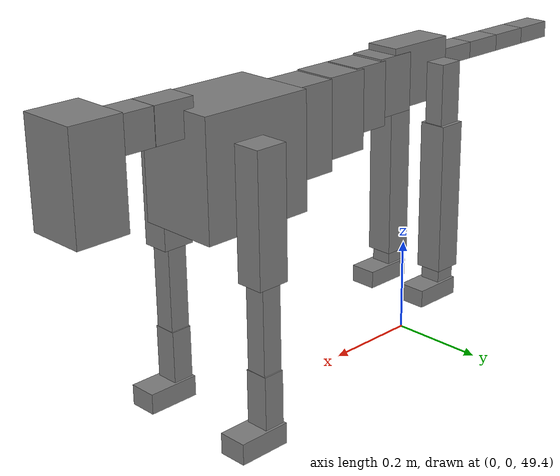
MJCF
<mujoco model="dog">

    <default>
        <joint armature="0.02" stiffness="1" damping="0.2" limited="true"/>
        <geom condim="3" friction="1 0.05 0.05" margin="0.01"/>
        <motor ctrllimited="true" ctrlrange="-1.0 1.0" forcelimited="true" gear="50"/>
    </default>

    <compiler inertiafromgeom="true" angle="radian"/>

    <option timestep="0.016" iterations="50" tolerance="1e-10" solver="Newton" jacobian="dense" cone="pyramidal"/>

    <size nconmax="20000" njmax="60000" nstack="5000000"/>
    <visual>
        <map force="0.1" zfar="30"/>
        <rgba haze="0.15 0.25 0.35 1"/>
        <quality shadowsize="2048"/>
        <global offwidth="800" offheight="800"/>
    </visual>

    <asset>
        <texture type="skybox" builtin="gradient" rgb1="0.3 0.5 0.7" rgb2="0 0 0" width="512" height="512"/>
        <texture name="texplane" type="2d" builtin="checker" rgb1=".2 .3 .4" rgb2=".1 0.15 0.2" width="512" height="512"
                 mark="cross" markrgb=".8 .8 .8"/>
        <texture name="texgeom" type="cube" builtin="flat" mark="cross" width="127" height="1278" rgb1="0.8 0.6 0.4"
                 rgb2="0.8 0.6 0.4" markrgb="1 1 1" random="0.01"/>

        <material name="matplane" reflectance="0.3" texture="texplane" texrepeat="1 1" texuniform="true"/>
        <material name="matgeom" texture="texgeom" texuniform="true" rgba="0.8 0.6 .4 1"/>
    </asset>

    <worldbody>
        <geom name="floor" pos="0 0 0" size="0 0 .25" type="plane" material="matplane" condim="3"/>

        <light directional="false" diffuse=".2 .2 .2" specular="0 0 0" pos="0 0 5" dir="0 0 -1" castshadow="false"/>
        <light mode="targetbodycom" target="torso" directional="false" diffuse=".8 .8 .8" specular="0.3 0.3 0.3"
               pos="0 0 4.0" dir="0 0 -1"/>

        <body name="root" pos="0 0 50">
            <freejoint name="root_1"/>
            <geom type="box" pos="0 0 -0.02" size="0.0774  0.0358  0.063" density="2030"/>

            <body name="spine1" pos="0.054 0 0">
                <joint name="spine1_y" axis="0 1 0" range="0 0.7" limited="true"/>
                <geom type="box" pos="0.02375 0 -0.03" size="0.04375  0.0375  0.05985" density="2030"/>

                <body name="spine2" pos="0.0612 0 0">
                    <joint name="spine2_y" axis="0 1 0" range="-0.15 0.15" limited="true"/>
                    <geom type="box" pos="0.03555  0  -0.04" size="0.04055  0.039  0.06615" density="2030"/>

                    <body name="spine3" pos="0.0730 0 0">
                        <joint name="spine3_y" axis="0 1 0" range="-0.15 0.15" limited="true"/>
                        <geom type="box" pos="0.03555  0  -0.057" size="0.04555  0.0445  0.081" density="2030"/>

                        <body name="spine4" pos="0.0780 0 0">
                            <joint name="spine4_y" axis="0 1 0" range="-0.15 0.15" limited="true"/>
                            <geom type="box" pos="0.05265  0  -0.07" size="0.05265  0.045  0.09135" density="2030"/>

                            <body name="torso" pos="0.1082 0 0">
                                <joint name="torso_y" axis="0 1 0" range="-0.15 0.15" limited="true"/>
                                <geom type="box" pos="0.11925  0  -0.085" size="0.11925  0.085  0.11745"
                                      density="2030"/>

                                <body name="neck1" pos="0.2160  0   0.0180">
                                    <joint name="neck1_y" axis="0 1 0" range="-1.2  -1" limited="true"/>
                                    <geom type="box" pos="0.0423  0  0" size="0.0423  0.03  0.036" density="2325"/>

                                    <body name="neck2" pos="0.0853  0  0">
                                        <joint name="neck2_y" axis="0 1 0" range="0.1  0" limited="true"/>
                                        <geom type="box" pos="0.0423  0  0" size="0.0423  0.03  0.036" density="2325"/>

                                        <body name="head" pos="0.0853  0  0">
                                            <joint name="head_y" axis="0 1 0" range="-0.3  -0.2" limited="true"/>
                                            <geom type="box" pos="0.0531  0  -0.055" size="0.0531  0.06  0.1044"
                                                  density="4030"/>

                                        </body>
                                    </body>
                                </body>

                                <body name="front_shoulder" pos="0.156  0   -0.0480">
                                    <joint name="front_shoulder_y" axis="0 1 0" range="-1 1.5" limited="true"/>
                                    <geom type="box" pos="0 0.13 -0.1037" size="0.0333  0.0285  0.1303" density="1158"/>
                                    <geom type="box" pos="0 -0.13 -0.1037" size="0.0333  0.0285  0.1303"
                                          density="1158"/>

                                    <body name="front_elbow" pos="0  0  -0.2073">
                                        <joint name="front_elbow_y" axis="0 1 0" range="-2 0" limited="true"/>
                                        <geom type="box" pos="0 0.13 -0.1070" size="0.0211  0.0216  0.1070"
                                              density="1081"/>
                                        <geom type="box" pos="0 -0.13 -0.1070" size="0.0211  0.0216  0.1070"
                                              density="1081"/>

                                        <body name="front_wrist" pos="0  0  -0.2139">
                                            <joint name="front_wrist_y" axis="0 1 0" range="-0.2 0" limited="true"/>
                                            <geom type="box" pos="0 0.13 -0.0555" size="0.0219  0.0243  0.0686"
                                                  density="1664"/>
                                            <geom type="box" pos="0 -0.13 -0.0555" size="0.0219  0.0243  0.0686"
                                                  density="1664"/>

                                            <body name="front_finger_end" pos="0  0  -0.1109">
                                                <joint name="front_finger_y" axis="0 1 0" range="-0.4 1"
                                                       limited="true"/>
                                                <geom type="box" pos="0.0296  0.13  -0.0063"
                                                      size="0.0543  0.0296  0.0213" density="1515"/>
                                                <geom type="box" pos="0.0296  -0.13  -0.0063"
                                                      size="0.0543  0.0296  0.0213" density="1515"/>

                                            </body>

                                        </body>
                                    </body>
                                </body>

                            </body>
                        </body>
                    </body>
                </body>
            </body>

            <body name="back_hip" pos="-0.03 0 -0.018">
                <joint name="back_hip_y" axis="0 1 0" range="-1.5 0.3" limited="true"/>
                <geom type="box" pos="0 0.07 -0.0598" size="0.0264  0.0207  0.0826" density="1154"/>
                <geom type="box" pos="0 -0.07 -0.0598" size="0.0264  0.0207  0.0826" density="1154"/>

                <body name="back_knee" pos="0  0  -0.1196">
                    <joint name="back_knee_y" axis="0 1 0" range="0 2.8" limited="true"/>
                    <geom type="box" pos="0 0.07 -0.1437" size="0.0293  0.0289  0.1592" density="1227"/>
                    <geom type="box" pos="0 -0.07 -0.1437" size="0.0293  0.0289  0.1592" density="1227"/>

                    <body name="back_ankle" pos="0  0  -0.2874">
                        <joint name="back_ankle_y" axis="0 1 0" range="-2.2 0" limited="true"/>
                        <geom type="box" pos="0 0.07 -0.0291" size="0.0224  0.0224  0.0403" density="1284"/>
                        <geom type="box" pos="0 -0.07 -0.0291" size="0.0224  0.0224  0.0403" density="1284"/>

                        <body name="back_toe_end" pos="0  0  -0.0582">
                            <joint name="back_toe_y" axis="0 1 0" range="-0.4 1" limited="true"/>
                            <geom type="box" pos="0.0286  0.07  -0.0035" size="0.0524  0.0286  0.0185" density="1515"/>
                            <geom type="box" pos="0.0286  -0.07  -0.0035" size="0.0524  0.0286  0.0185" density="1515"/>

                        </body>
                    </body>
                </body>
            </body>

            <body name="tail1" pos="-0.074 0 -0.006">
                <joint name="tail1_y" axis="0 1 0" range="-0.2 0.2" limited="true"/>
                <geom type="box" pos="-0.0536  0  0" size="0.045  0.025  0.0175" density="1587"/>

                <body name="tail2" pos="-0.09 0 0">
                    <joint name="tail2_y" axis="0 1 0" range="-0.2 0.2" limited="true"/>
                    <geom type="box" pos="-0.0536  0  0" size="0.045  0.025  0.0175" density="1587"/>

                    <body name="tail3" pos="-0.09 0 0">
                        <joint name="tail3_y" axis="0 1 0" range="-0.2 0.2" limited="true"/>
                        <geom type="box" pos="-0.0536  0  0" size="0.045  0.025  0.0175" density="1587"/>

                        <body name="tail4" pos="-0.09 0 0">
                            <joint name="tail4_y" axis="0 1 0" range="-0.2 0.2" limited="true"/>
                            <geom type="box" pos="-0.0536  0  0" size="0.045  0.025  0.0175" density="1587"/>

                        </body>
                    </body>
                </body>
            </body>
        </body>
    </worldbody>

    <actuator>
        <motor joint="spine1_y" forcerange="-150 150     "/>
        <motor joint="spine2_y" forcerange="-150 150     "/>
        <motor joint="spine3_y" forcerange="-150 150     "/>
        <motor joint="spine4_y" forcerange="-150 150     "/>
        <motor joint="torso_y" forcerange="-150 150     "/>
        <motor joint="neck1_y" forcerange="-100 100       "/>
        <motor joint="neck2_y" forcerange="-100 100       "/>
        <motor joint="head_y" forcerange="-150 150       "/>
        <motor joint="front_shoulder_y" forcerange="-158.30 131.46"/>
        <motor joint="front_elbow_y" forcerange="-126.56 130.38"/>
        <motor joint="front_wrist_y" forcerange="-75.18 119.48"/>
        <motor joint="front_finger_y" forcerange="-20.39 97.51"/>
        <motor joint="back_hip_y" forcerange="-255.59 220.05"/>
        <motor joint="back_knee_y" forcerange="-258.74 361.24"/>
        <motor joint="back_angle_y" forcerange="-141.33 117.59"/>
        <motor joint="back_toe_y" forcerange="-113.58 35.20"/>
        <motor joint="tail1_y" forcerange="-50 50     "/>
        <motor joint="tail2_y" forcerange="-50 50     "/>
        <motor joint="tail3_y" forcerange="-50 50     "/>
        <motor joint="tail4_y" forcerange="-50 50     "/>
    </actuator>
</mujoco>
